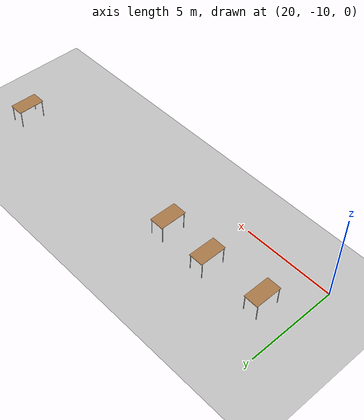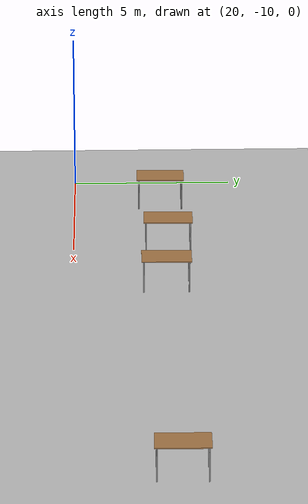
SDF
<sdf version="1.7">
 <world name="default">
  <model name="ground_plane">
   <static>1</static>
   <link name="link">
    <collision name="collision">
     <geometry><plane><normal>0 0 1</normal><size>100 100</size></plane></geometry>
     <surface>
      <contact><collide_bitmask>65535</collide_bitmask></contact>
      <friction><ode><mu>100</mu><mu2>50</mu2></ode></friction>
     </surface>
    </collision>
    <visual name="visual">
     <cast_shadows>0</cast_shadows>
     <geometry><plane><normal>0 0 1</normal><size>100 100</size></plane></geometry>
     <material>
      <script><uri>file://media/materials/scripts/gazebo.material</uri><name>Gazebo/Grey</name></script>
     </material>
    </visual>
   </link>
  </model>
  <model name="table_clone_2">
   <static>1</static>
   <link name="link">
    <collision name="surface">
     <pose>0 0 1 0 -0 0</pose>
     <geometry><box><size>1.5 0.8 0.03</size></box></geometry>
     <surface><friction><ode><mu>0.6</mu><mu2>0.6</mu2></ode></friction></surface>
    </collision>
    <visual name="visual1">
     <pose>0 0 1 0 -0 0</pose>
     <geometry><box><size>1.5 0.8 0.03</size></box></geometry>
     <material>
      <script><uri>file://media/materials/scripts/gazebo.material</uri><name>Gazebo/Wood</name></script>
     </material>
    </visual>
    <collision name="front_left_leg">
     <pose>0.68 0.38 0.5 0 -0 0</pose>
     <geometry><cylinder><radius>0.02</radius><length>1</length></cylinder></geometry>
    </collision>
    <visual name="front_left_leg">
     <pose>0.68 0.38 0.5 0 -0 0</pose>
     <geometry><cylinder><radius>0.02</radius><length>1</length></cylinder></geometry>
     <material>
      <script><uri>file://media/materials/scripts/gazebo.material</uri><name>Gazebo/Grey</name></script>
     </material>
    </visual>
    <collision name="front_right_leg">
     <pose>0.68 -0.38 0.5 0 -0 0</pose>
     <geometry><cylinder><radius>0.02</radius><length>1</length></cylinder></geometry>
    </collision>
    <visual name="front_right_leg">
     <pose>0.68 -0.38 0.5 0 -0 0</pose>
     <geometry><cylinder><radius>0.02</radius><length>1</length></cylinder></geometry>
     <material>
      <script><uri>file://media/materials/scripts/gazebo.material</uri><name>Gazebo/Grey</name></script>
     </material>
    </visual>
    <collision name="back_right_leg">
     <pose>-0.68 -0.38 0.5 0 -0 0</pose>
     <geometry><cylinder><radius>0.02</radius><length>1</length></cylinder></geometry>
    </collision>
    <visual name="back_right_leg">
     <pose>-0.68 -0.38 0.5 0 -0 0</pose>
     <geometry><cylinder><radius>0.02</radius><length>1</length></cylinder></geometry>
     <material>
      <script><uri>file://media/materials/scripts/gazebo.material</uri><name>Gazebo/Grey</name></script>
     </material>
    </visual>
    <collision name="back_left_leg">
     <pose>-0.68 0.38 0.5 0 -0 0</pose>
     <geometry><cylinder><radius>0.02</radius><length>1</length></cylinder></geometry>
    </collision>
    <visual name="back_left_leg">
     <pose>-0.68 0.38 0.5 0 -0 0</pose>
     <geometry><cylinder><radius>0.02</radius><length>1</length></cylinder></geometry>
     <material>
      <script><uri>file://media/materials/scripts/gazebo.material</uri><name>Gazebo/Grey</name></script>
     </material>
    </visual>
   </link>
   <pose>21.6532 -7.26938 0 -2.1e-05 0.002967 1.56384</pose>
  </model>
  <model name="table_clone_3">
   <static>1</static>
   <link name="link">
    <collision name="surface">
     <pose>0 0 1 0 -0 0</pose>
     <geometry><box><size>1.5 0.8 0.03</size></box></geometry>
     <surface><friction><ode><mu>0.6</mu><mu2>0.6</mu2></ode></friction></surface>
    </collision>
    <visual name="visual1">
     <pose>0 0 1 0 -0 0</pose>
     <geometry><box><size>1.5 0.8 0.03</size></box></geometry>
     <material>
      <script><uri>file://media/materials/scripts/gazebo.material</uri><name>Gazebo/Wood</name></script>
     </material>
    </visual>
    <collision name="front_left_leg">
     <pose>0.68 0.38 0.5 0 -0 0</pose>
     <geometry><cylinder><radius>0.02</radius><length>1</length></cylinder></geometry>
    </collision>
    <visual name="front_left_leg">
     <pose>0.68 0.38 0.5 0 -0 0</pose>
     <geometry><cylinder><radius>0.02</radius><length>1</length></cylinder></geometry>
     <material>
      <script><uri>file://media/materials/scripts/gazebo.material</uri><name>Gazebo/Grey</name></script>
     </material>
    </visual>
    <collision name="front_right_leg">
     <pose>0.68 -0.38 0.5 0 -0 0</pose>
     <geometry><cylinder><radius>0.02</radius><length>1</length></cylinder></geometry>
    </collision>
    <visual name="front_right_leg">
     <pose>0.68 -0.38 0.5 0 -0 0</pose>
     <geometry><cylinder><radius>0.02</radius><length>1</length></cylinder></geometry>
     <material>
      <script><uri>file://media/materials/scripts/gazebo.material</uri><name>Gazebo/Grey</name></script>
     </material>
    </visual>
    <collision name="back_right_leg">
     <pose>-0.68 -0.38 0.5 0 -0 0</pose>
     <geometry><cylinder><radius>0.02</radius><length>1</length></cylinder></geometry>
    </collision>
    <visual name="back_right_leg">
     <pose>-0.68 -0.38 0.5 0 -0 0</pose>
     <geometry><cylinder><radius>0.02</radius><length>1</length></cylinder></geometry>
     <material>
      <script><uri>file://media/materials/scripts/gazebo.material</uri><name>Gazebo/Grey</name></script>
     </material>
    </visual>
    <collision name="back_left_leg">
     <pose>-0.68 0.38 0.5 0 -0 0</pose>
     <geometry><cylinder><radius>0.02</radius><length>1</length></cylinder></geometry>
    </collision>
    <visual name="back_left_leg">
     <pose>-0.68 0.38 0.5 0 -0 0</pose>
     <geometry><cylinder><radius>0.02</radius><length>1</length></cylinder></geometry>
     <material>
      <script><uri>file://media/materials/scripts/gazebo.material</uri><name>Gazebo/Grey</name></script>
     </material>
    </visual>
   </link>
   <pose>24.8744 -7.09173 0 -2.1e-05 0.002967 1.56384</pose>
  </model>
  <model name="table_clone_4">
   <static>1</static>
   <link name="link">
    <collision name="surface">
     <pose>0 0 1 0 -0 0</pose>
     <geometry><box><size>1.5 0.8 0.03</size></box></geometry>
     <surface><friction><ode><mu>0.6</mu><mu2>0.6</mu2></ode></friction></surface>
    </collision>
    <visual name="visual1">
     <pose>0 0 1 0 -0 0</pose>
     <geometry><box><size>1.5 0.8 0.03</size></box></geometry>
     <material>
      <script><uri>file://media/materials/scripts/gazebo.material</uri><name>Gazebo/Wood</name></script>
     </material>
    </visual>
    <collision name="front_left_leg">
     <pose>0.68 0.38 0.5 0 -0 0</pose>
     <geometry><cylinder><radius>0.02</radius><length>1</length></cylinder></geometry>
    </collision>
    <visual name="front_left_leg">
     <pose>0.68 0.38 0.5 0 -0 0</pose>
     <geometry><cylinder><radius>0.02</radius><length>1</length></cylinder></geometry>
     <material>
      <script><uri>file://media/materials/scripts/gazebo.material</uri><name>Gazebo/Grey</name></script>
     </material>
    </visual>
    <collision name="front_right_leg">
     <pose>0.68 -0.38 0.5 0 -0 0</pose>
     <geometry><cylinder><radius>0.02</radius><length>1</length></cylinder></geometry>
    </collision>
    <visual name="front_right_leg">
     <pose>0.68 -0.38 0.5 0 -0 0</pose>
     <geometry><cylinder><radius>0.02</radius><length>1</length></cylinder></geometry>
     <material>
      <script><uri>file://media/materials/scripts/gazebo.material</uri><name>Gazebo/Grey</name></script>
     </material>
    </visual>
    <collision name="back_right_leg">
     <pose>-0.68 -0.38 0.5 0 -0 0</pose>
     <geometry><cylinder><radius>0.02</radius><length>1</length></cylinder></geometry>
    </collision>
    <visual name="back_right_leg">
     <pose>-0.68 -0.38 0.5 0 -0 0</pose>
     <geometry><cylinder><radius>0.02</radius><length>1</length></cylinder></geometry>
     <material>
      <script><uri>file://media/materials/scripts/gazebo.material</uri><name>Gazebo/Grey</name></script>
     </material>
    </visual>
    <collision name="back_left_leg">
     <pose>-0.68 0.38 0.5 0 -0 0</pose>
     <geometry><cylinder><radius>0.02</radius><length>1</length></cylinder></geometry>
    </collision>
    <visual name="back_left_leg">
     <pose>-0.68 0.38 0.5 0 -0 0</pose>
     <geometry><cylinder><radius>0.02</radius><length>1</length></cylinder></geometry>
     <material>
      <script><uri>file://media/materials/scripts/gazebo.material</uri><name>Gazebo/Grey</name></script>
     </material>
    </visual>
   </link>
   <pose>27.6357 -7.20288 0 -2.1e-05 0.002967 1.56384</pose>
  </model>
  <model name="table_clone_5">
   <static>1</static>
   <link name="link">
    <collision name="surface">
     <pose>0 0 1 0 -0 0</pose>
     <geometry><box><size>1.5 0.8 0.03</size></box></geometry>
     <surface><friction><ode><mu>0.6</mu><mu2>0.6</mu2></ode></friction></surface>
    </collision>
    <visual name="visual1">
     <pose>0 0 1 0 -0 0</pose>
     <geometry><box><size>1.5 0.8 0.03</size></box></geometry>
     <material>
      <script><uri>file://media/materials/scripts/gazebo.material</uri><name>Gazebo/Wood</name></script>
     </material>
    </visual>
    <collision name="front_left_leg">
     <pose>0.68 0.38 0.5 0 -0 0</pose>
     <geometry><cylinder><radius>0.02</radius><length>1</length></cylinder></geometry>
    </collision>
    <visual name="front_left_leg">
     <pose>0.68 0.38 0.5 0 -0 0</pose>
     <geometry><cylinder><radius>0.02</radius><length>1</length></cylinder></geometry>
     <material>
      <script><uri>file://media/materials/scripts/gazebo.material</uri><name>Gazebo/Grey</name></script>
     </material>
    </visual>
    <collision name="front_right_leg">
     <pose>0.68 -0.38 0.5 0 -0 0</pose>
     <geometry><cylinder><radius>0.02</radius><length>1</length></cylinder></geometry>
    </collision>
    <visual name="front_right_leg">
     <pose>0.68 -0.38 0.5 0 -0 0</pose>
     <geometry><cylinder><radius>0.02</radius><length>1</length></cylinder></geometry>
     <material>
      <script><uri>file://media/materials/scripts/gazebo.material</uri><name>Gazebo/Grey</name></script>
     </material>
    </visual>
    <collision name="back_right_leg">
     <pose>-0.68 -0.38 0.5 0 -0 0</pose>
     <geometry><cylinder><radius>0.02</radius><length>1</length></cylinder></geometry>
    </collision>
    <visual name="back_right_leg">
     <pose>-0.68 -0.38 0.5 0 -0 0</pose>
     <geometry><cylinder><radius>0.02</radius><length>1</length></cylinder></geometry>
     <material>
      <script><uri>file://media/materials/scripts/gazebo.material</uri><name>Gazebo/Grey</name></script>
     </material>
    </visual>
    <collision name="back_left_leg">
     <pose>-0.68 0.38 0.5 0 -0 0</pose>
     <geometry><cylinder><radius>0.02</radius><length>1</length></cylinder></geometry>
    </collision>
    <visual name="back_left_leg">
     <pose>-0.68 0.38 0.5 0 -0 0</pose>
     <geometry><cylinder><radius>0.02</radius><length>1</length></cylinder></geometry>
     <material>
      <script><uri>file://media/materials/scripts/gazebo.material</uri><name>Gazebo/Grey</name></script>
     </material>
    </visual>
   </link>
   <pose>38.6069 -7.03401 0 -2.1e-05 0.002967 1.56384</pose>
  </model>
 </world>
</sdf>
